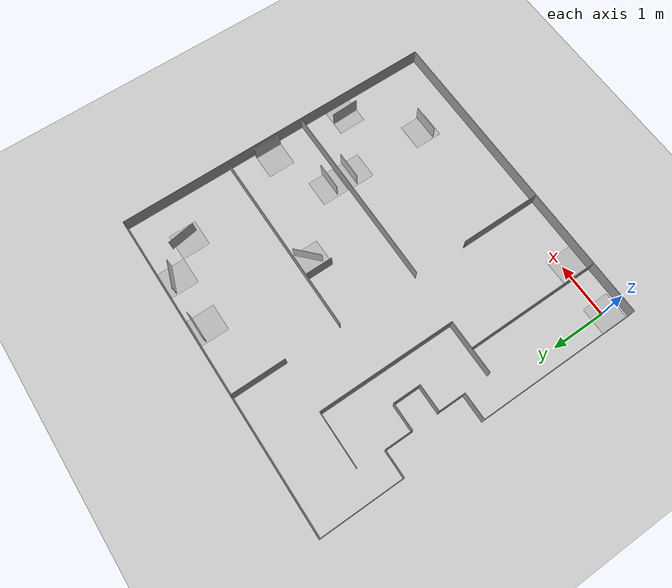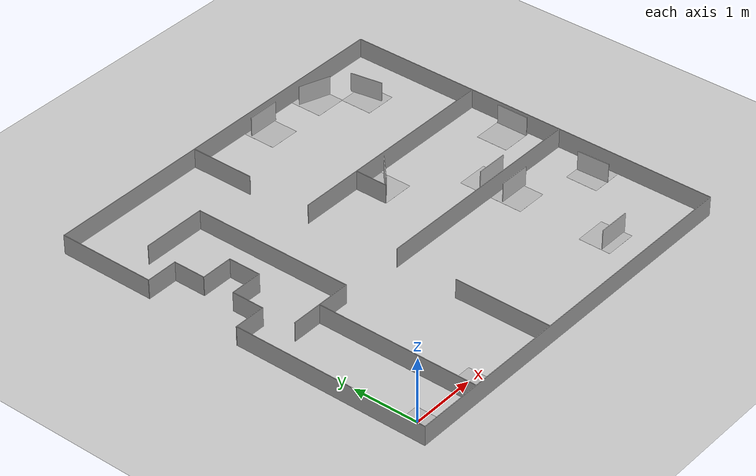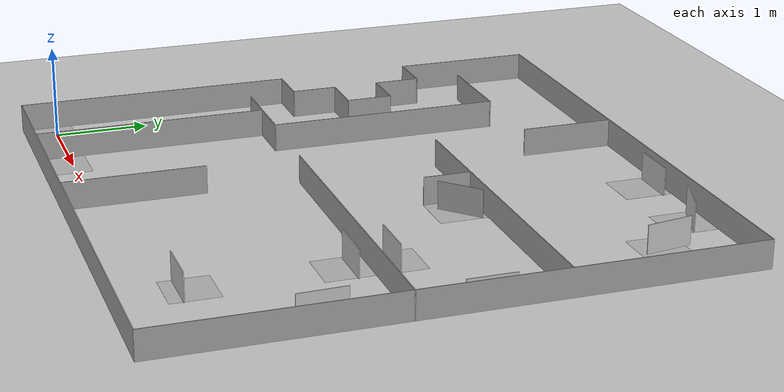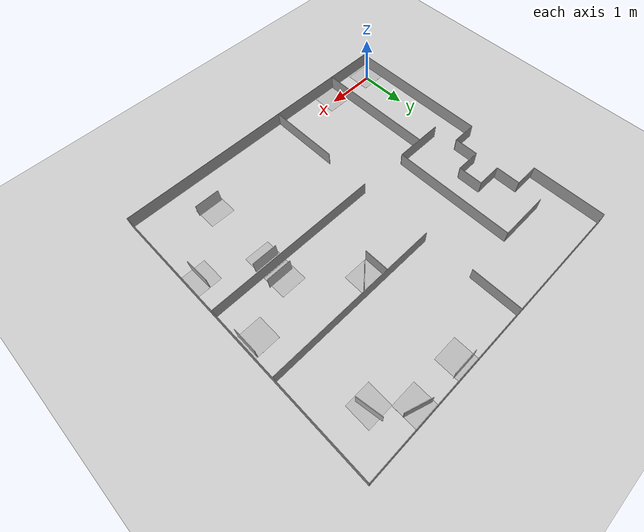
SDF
<sdf version="1.6">
 <world name="default">
  <light name="sun" type="directional">
   <pose>0 0 10 0 -0 0</pose>
   <diffuse>0.8 0.8 0.8 1</diffuse>
   <specular>0.2 0.2 0.2 1</specular>
   <attenuation>
    <range>1000</range>
    <constant>0.9</constant>
    <linear>0.01</linear>
    <quadratic>0.001</quadratic>
   </attenuation>
   <direction>-0.5 0.1 -0.9</direction>
  </light>
  <model name="ground_plane">
   <static>1</static>
   <link name="link">
    <collision name="collision">
     <geometry><plane><normal>0 0 1</normal><size>100 100</size></plane></geometry>
     <surface>
      <contact><collide_bitmask>65535</collide_bitmask></contact>
      <friction><ode><mu>100</mu><mu2>50</mu2></ode></friction>
     </surface>
    </collision>
    <visual name="visual">
     <cast_shadows>0</cast_shadows>
     <geometry><plane><normal>0 0 1</normal><size>100 100</size></plane></geometry>
     <material>
      <script><uri>file://media/materials/scripts/gazebo.material</uri><name>Gazebo/Grey</name></script>
     </material>
    </visual>
   </link>
  </model>
  <gravity>0 0 -9.8</gravity>
  <magnetic_field>6e-06 2.3e-05 -4.2e-05</magnetic_field>
  <atmosphere type="adiabatic"/>
  <physics name="default_physics" default="0" type="ode">
   <max_step_size>0.001</max_step_size>
   <real_time_factor>1</real_time_factor>
   <real_time_update_rate>1000</real_time_update_rate>
  </physics>
  <scene><ambient>0.4 0.4 0.4 1</ambient><background>0.7 0.7 0.7 1</background><shadows>1</shadows></scene>
  <audio><device>default</device></audio>
  <spherical_coordinates>
   <surface_model>EARTH_WGS84</surface_model>
   <latitude_deg>0</latitude_deg>
   <longitude_deg>0</longitude_deg>
   <elevation>0</elevation>
   <heading_deg>0</heading_deg>
  </spherical_coordinates>
  <model name="arena">
   <pose>2.72717 2.66142 0 0 -0 0</pose>
   <link name="Wall_1">
    <collision name="Wall_1_Collision">
     <geometry><box><size>6 0.01 0.3</size></box></geometry>
     <pose>0 0 0.15 0 -0 0</pose>
    </collision>
    <visual name="Wall_1_Visual">
     <pose>0 0 0.15 0 -0 0</pose>
     <geometry><box><size>6 0.01 0.3</size></box></geometry>
     <material>
      <script><uri>file://media/materials/scripts/gazebo.material</uri><name>Gazebo/Grey</name></script>
      <ambient>1 1 1 1</ambient>
     </material>
     <meta><layer>0</layer></meta>
    </visual>
    <pose>0.001988 -2.99751 0 0 -0 0</pose>
   </link>
   <link name="Wall_11">
    <collision name="Wall_11_Collision">
     <geometry><box><size>1.5 0.01 0.3</size></box></geometry>
     <pose>0 0 0.15 0 -0 0</pose>
    </collision>
    <visual name="Wall_11_Visual">
     <pose>0 0 0.15 0 -0 0</pose>
     <geometry><box><size>1.5 0.01 0.3</size></box></geometry>
     <material>
      <script><uri>file://media/materials/scripts/gazebo.material</uri><name>Gazebo/Grey</name></script>
      <ambient>1 1 1 1</ambient>
     </material>
     <meta><layer>0</layer></meta>
    </visual>
    <pose>-2.99841 2.25251 0 0 -0 1.5708</pose>
   </link>
   <link name="Wall_20">
    <collision name="Wall_20_Collision">
     <geometry><box><size>0.5 0.01 0.3</size></box></geometry>
     <pose>0 0 0.15 0 -0 0</pose>
    </collision>
    <visual name="Wall_20_Visual">
     <pose>0 0 0.15 0 -0 0</pose>
     <geometry><box><size>0.5 0.01 0.3</size></box></geometry>
     <material>
      <script><uri>file://media/materials/scripts/gazebo.material</uri><name>Gazebo/Grey</name></script>
      <ambient>1 1 1 1</ambient>
     </material>
     <meta><layer>0</layer></meta>
    </visual>
    <pose>-2.75425 1.50057 0 0 -0 0</pose>
   </link>
   <link name="Wall_22">
    <collision name="Wall_22_Collision">
     <geometry><box><size>0.5 0.01 0.3</size></box></geometry>
     <pose>0 0 0.15 0 -0 0</pose>
    </collision>
    <visual name="Wall_22_Visual">
     <pose>0 0 0.15 0 -0 0</pose>
     <geometry><box><size>0.5 0.01 0.3</size></box></geometry>
     <material>
      <script><uri>file://media/materials/scripts/gazebo.material</uri><name>Gazebo/Grey</name></script>
      <ambient>1 1 1 1</ambient>
     </material>
     <meta><layer>0</layer></meta>
    </visual>
    <pose>-2.50969 1.25495 0 0 -0 1.5708</pose>
   </link>
   <link name="Wall_24">
    <collision name="Wall_24_Collision">
     <geometry><box><size>0.5 0.01 0.3</size></box></geometry>
     <pose>0 0 0.15 0 -0 0</pose>
    </collision>
    <visual name="Wall_24_Visual">
     <pose>0 0 0.15 0 -0 0</pose>
     <geometry><box><size>0.5 0.01 0.3</size></box></geometry>
     <material>
      <script><uri>file://media/materials/scripts/gazebo.material</uri><name>Gazebo/Grey</name></script>
      <ambient>1 1 1 1</ambient>
     </material>
     <meta><layer>0</layer></meta>
    </visual>
    <pose>-2.26459 1.00122 0 0 -0 0</pose>
   </link>
   <link name="Wall_28">
    <collision name="Wall_28_Collision">
     <geometry><box><size>0.5 0.01 0.3</size></box></geometry>
     <pose>0 0 0.15 0 -0 0</pose>
    </collision>
    <visual name="Wall_28_Visual">
     <pose>0 0 0.15 0 -0 0</pose>
     <geometry><box><size>0.5 0.01 0.3</size></box></geometry>
     <material>
      <script><uri>file://media/materials/scripts/gazebo.material</uri><name>Gazebo/Grey</name></script>
      <ambient>1 1 1 1</ambient>
     </material>
     <meta><layer>0</layer></meta>
    </visual>
    <pose>-2.01503 0.755808 0 0 -0 -1.5708</pose>
   </link>
   <link name="Wall_30">
    <collision name="Wall_30_Collision">
     <geometry><box><size>0.5 0.01 0.3</size></box></geometry>
     <pose>0 0 0.15 0 -0 0</pose>
    </collision>
    <visual name="Wall_30_Visual">
     <pose>0 0 0.15 0 -0 0</pose>
     <geometry><box><size>0.5 0.01 0.3</size></box></geometry>
     <material>
      <script><uri>file://media/materials/scripts/gazebo.material</uri><name>Gazebo/Grey</name></script>
      <ambient>1 1 1 1</ambient>
     </material>
     <meta><layer>0</layer></meta>
    </visual>
    <pose>-2.25991 0.503524 0 0 -0 0</pose>
   </link>
   <link name="Wall_34">
    <collision name="Wall_34_Collision">
     <geometry><box><size>0.5 0.01 0.3</size></box></geometry>
     <pose>0 0 0.15 0 -0 0</pose>
    </collision>
    <visual name="Wall_34_Visual">
     <pose>0 0 0.15 0 -0 0</pose>
     <geometry><box><size>0.5 0.01 0.3</size></box></geometry>
     <material>
      <script><uri>file://media/materials/scripts/gazebo.material</uri><name>Gazebo/Grey</name></script>
      <ambient>1 1 1 1</ambient>
     </material>
     <meta><layer>0</layer></meta>
    </visual>
    <pose>-2.50907 0.257403 0 0 -0 -1.5708</pose>
   </link>
   <link name="Wall_36">
    <collision name="Wall_36_Collision">
     <geometry><box><size>0.5 0.01 0.3</size></box></geometry>
     <pose>0 0 0.15 0 -0 0</pose>
    </collision>
    <visual name="Wall_36_Visual">
     <pose>0 0 0.15 0 -0 0</pose>
     <geometry><box><size>0.5 0.01 0.3</size></box></geometry>
     <material>
      <script><uri>file://media/materials/scripts/gazebo.material</uri><name>Gazebo/Grey</name></script>
      <ambient>1 1 1 1</ambient>
     </material>
     <meta><layer>0</layer></meta>
    </visual>
    <pose>-2.75227 0.011599 0 0 -0 0</pose>
   </link>
   <link name="Wall_38">
    <collision name="Wall_38_Collision">
     <geometry><box><size>3.012 0.01 0.3</size></box></geometry>
     <pose>0 0 0.15 0 -0 0</pose>
    </collision>
    <visual name="Wall_38_Visual">
     <pose>0 0 0.15 0 -0 0</pose>
     <geometry><box><size>3.012 0.01 0.3</size></box></geometry>
     <material>
      <script><uri>file://media/materials/scripts/gazebo.material</uri><name>Gazebo/Grey</name></script>
      <ambient>1 1 1 1</ambient>
     </material>
     <meta><layer>0</layer></meta>
    </visual>
    <pose>-2.99601 -1.49551 0 0 -0 -1.5708</pose>
   </link>
   <link name="Wall_41">
    <collision name="Wall_41_Collision">
     <geometry><box><size>1 0.01 0.3</size></box></geometry>
     <pose>0 0 0.15 0 -0 0</pose>
    </collision>
    <visual name="Wall_41_Visual">
     <pose>0 0 0.15 0 -0 0</pose>
     <geometry><box><size>1 0.01 0.3</size></box></geometry>
     <material>
      <script><uri>file://media/materials/scripts/gazebo.material</uri><name>Gazebo/Grey</name></script>
      <ambient>1 1 1 1</ambient>
     </material>
     <meta><layer>0</layer></meta>
    </visual>
    <pose>-0.498279 2.49812 0 0 -0 1.5708</pose>
   </link>
   <link name="Wall_44">
    <collision name="Wall_44_Collision">
     <geometry><box><size>3.5 0.01 0.3</size></box></geometry>
     <pose>0 0 0.15 0 -0 0</pose>
    </collision>
    <visual name="Wall_44_Visual">
     <pose>0 0 0.15 0 -0 0</pose>
     <geometry><box><size>3.5 0.01 0.3</size></box></geometry>
     <material>
      <script><uri>file://media/materials/scripts/gazebo.material</uri><name>Gazebo/Grey</name></script>
      <ambient>1 1 1 1</ambient>
     </material>
     <meta><layer>0</layer></meta>
    </visual>
    <pose>1.25071 0.982331 0 0 -0 0</pose>
   </link>
   <link name="Wall_46">
    <collision name="Wall_46_Collision">
     <geometry><box><size>0.5 0.01 0.3</size></box></geometry>
     <pose>0 0 0.15 0 -0 0</pose>
    </collision>
    <visual name="Wall_46_Visual">
     <pose>0 0 0.15 0 -0 0</pose>
     <geometry><box><size>0.5 0.01 0.3</size></box></geometry>
     <material>
      <script><uri>file://media/materials/scripts/gazebo.material</uri><name>Gazebo/Grey</name></script>
      <ambient>1 1 1 1</ambient>
     </material>
     <meta><layer>0</layer></meta>
    </visual>
    <pose>0.496275 0.729352 0 0 -0 1.5708</pose>
   </link>
   <link name="Wall_48">
    <collision name="Wall_48_Collision">
     <geometry><box><size>3.5 0.01 0.3</size></box></geometry>
     <pose>0 0 0.15 0 -0 0</pose>
    </collision>
    <visual name="Wall_48_Visual">
     <pose>0 0 0.15 0 -0 0</pose>
     <geometry><box><size>3.5 0.01 0.3</size></box></geometry>
     <material>
      <script><uri>file://media/materials/scripts/gazebo.material</uri><name>Gazebo/Grey</name></script>
      <ambient>1 1 1 1</ambient>
     </material>
     <meta><layer>0</layer></meta>
    </visual>
    <pose>1.25425 -0.520404 0 0 -0 0</pose>
   </link>
   <link name="Wall_50">
    <collision name="Wall_50_Collision">
     <geometry><box><size>1.5 0.01 0.3</size></box></geometry>
     <pose>0 0 0.15 0 -0 0</pose>
    </collision>
    <visual name="Wall_50_Visual">
     <pose>0 0 0.15 0 -0 0</pose>
     <geometry><box><size>1.5 0.01 0.3</size></box></geometry>
     <material>
      <script><uri>file://media/materials/scripts/gazebo.material</uri><name>Gazebo/Grey</name></script>
      <ambient>1 1 1 1</ambient>
     </material>
     <meta><layer>0</layer></meta>
    </visual>
    <pose>-0.512233 -2.25115 0 0 -0 -1.5708</pose>
   </link>
   <link name="Wall_52">
    <collision name="Wall_52_Collision">
     <geometry><box><size>2.5 0.01 0.3</size></box></geometry>
     <pose>0 0 0.15 0 -0 0</pose>
    </collision>
    <visual name="Wall_52_Visual">
     <pose>0 0 0.15 0 -0 0</pose>
     <geometry><box><size>2.5 0.01 0.3</size></box></geometry>
     <material>
      <script><uri>file://media/materials/scripts/gazebo.material</uri><name>Gazebo/Grey</name></script>
      <ambient>1 1 1 1</ambient>
     </material>
     <meta><layer>0</layer></meta>
    </visual>
    <pose>-2.00505 -1.74423 0 0 -0 -1.5708</pose>
   </link>
   <link name="Wall_54">
    <collision name="Wall_54_Collision">
     <geometry><box><size>1 0.01 0.3</size></box></geometry>
     <pose>0 0 0.15 0 -0 0</pose>
    </collision>
    <visual name="Wall_54_Visual">
     <pose>0 0 0.15 0 -0 0</pose>
     <geometry><box><size>1 0.01 0.3</size></box></geometry>
     <material>
      <script><uri>file://media/materials/scripts/gazebo.material</uri><name>Gazebo/Grey</name></script>
      <ambient>1 1 1 1</ambient>
     </material>
     <meta><layer>0</layer></meta>
    </visual>
    <pose>-1.98078 -0.499121 0 0 -0 0</pose>
   </link>
   <link name="Wall_56">
    <collision name="Wall_56_Collision">
     <geometry><box><size>2.5 0.01 0.3</size></box></geometry>
     <pose>0 0 0.15 0 -0 0</pose>
    </collision>
    <visual name="Wall_56_Visual">
     <pose>0 0 0.15 0 -0 0</pose>
     <geometry><box><size>2.5 0.01 0.3</size></box></geometry>
     <material>
      <script><uri>file://media/materials/scripts/gazebo.material</uri><name>Gazebo/Grey</name></script>
      <ambient>1 1 1 1</ambient>
     </material>
     <meta><layer>0</layer></meta>
    </visual>
    <pose>-1.48616 0.751059 0 0 -0 -1.5708</pose>
   </link>
   <link name="Wall_58">
    <collision name="Wall_58_Collision">
     <geometry><box><size>1 0.01 0.3</size></box></geometry>
     <pose>0 0 0.15 0 -0 0</pose>
    </collision>
    <visual name="Wall_58_Visual">
     <pose>0 0 0.15 0 -0 0</pose>
     <geometry><box><size>1 0.01 0.3</size></box></geometry>
     <material>
      <script><uri>file://media/materials/scripts/gazebo.material</uri><name>Gazebo/Grey</name></script>
      <ambient>1 1 1 1</ambient>
     </material>
     <meta><layer>0</layer></meta>
    </visual>
    <pose>-1.9786 2.00012 0 0 -0 0</pose>
   </link>
   <link name="Wall_6">
    <collision name="Wall_6_Collision">
     <geometry><box><size>6 0.01 0.3</size></box></geometry>
     <pose>0 0 0.15 0 -0 0</pose>
    </collision>
    <visual name="Wall_6_Visual">
     <pose>0 0 0.15 0 -0 0</pose>
     <geometry><box><size>6 0.01 0.3</size></box></geometry>
     <material>
      <script><uri>file://media/materials/scripts/gazebo.material</uri><name>Gazebo/Grey</name></script>
      <ambient>1 1 1 1</ambient>
     </material>
     <meta><layer>0</layer></meta>
    </visual>
    <pose>2.99837 -0.000334 0 0 -0 -1.5708</pose>
   </link>
   <link name="Wall_8">
    <collision name="Wall_8_Collision">
     <geometry><box><size>6 0.01 0.3</size></box></geometry>
     <pose>0 0 0.15 0 -0 0</pose>
    </collision>
    <visual name="Wall_8_Visual">
     <pose>0 0 0.15 0 -0 0</pose>
     <geometry><box><size>6 0.01 0.3</size></box></geometry>
     <material>
      <script><uri>file://media/materials/scripts/gazebo.material</uri><name>Gazebo/Grey</name></script>
      <ambient>1 1 1 1</ambient>
     </material>
     <meta><layer>0</layer></meta>
    </visual>
    <pose>-0.003034 2.99691 0 0 -0 0</pose>
   </link>
   <static>1</static>
  </model>
  <model name="start_plane">
   <static>1</static>
   <link name="link">
    <collision name="collision">
     <geometry><plane><normal>0 0 1</normal><size>0.5 0.5</size></plane></geometry>
     <surface><friction><ode><mu>100</mu><mu2>50</mu2></ode></friction></surface>
    </collision>
    <visual name="visual">
     <cast_shadows>0</cast_shadows>
     <geometry><plane><normal>0 0 1</normal><size>0.5 0.5</size></plane></geometry>
     <material>
      <script>
       <uri>model://start_plane/materials/scripts</uri>
       <uri>model://start_plane/materials/textures/</uri>
       <name>StartPlane/Image</name>
      </script>
     </material>
    </visual>
   </link>
   <pose>-0.018469 -0.051337 0 0 -0 0</pose>
  </model>
  <model name="end_plane">
   <static>1</static>
   <link name="link">
    <collision name="collision">
     <geometry><plane><normal>0 0 1</normal><size>0.5 0.5</size></plane></geometry>
     <surface><friction><ode><mu>100</mu><mu2>50</mu2></ode></friction></surface>
    </collision>
    <visual name="visual">
     <cast_shadows>0</cast_shadows>
     <geometry><plane><normal>0 0 1</normal><size>0.5 0.5</size></plane></geometry>
     <material>
      <script>
       <uri>model://end_plane/materials/scripts</uri>
       <uri>model://end_plane/materials/textures/</uri>
       <name>EndPlane/Image</name>
      </script>
     </material>
    </visual>
   </link>
   <pose>0.969955 -0.083763 0 0 -0 0</pose>
  </model>
  <model name="end_plane_2">
   <static>1</static>
   <link name="link">
    <collision name="collision">
     <geometry><plane><normal>0 0 1</normal><size>0.5 0.5</size></plane></geometry>
     <surface><friction><ode><mu>100</mu><mu2>50</mu2></ode></friction></surface>
    </collision>
    <visual name="visual">
     <cast_shadows>0</cast_shadows>
     <geometry><plane><normal>0 0 1</normal><size>0.5 0.5</size></plane></geometry>
     <material>
      <script>
       <uri>model://end_plane/materials/scripts</uri>
       <uri>model://end_plane/materials/textures/</uri>
       <name>EndPlane/Image</name>
      </script>
     </material>
    </visual>
   </link>
   <pose>4.47135 5.4022 0 0 -0 0</pose>
  </model>
  <model name="end_plane_1">
   <static>1</static>
   <link name="link">
    <collision name="collision">
     <geometry><plane><normal>0 0 1</normal><size>0.5 0.5</size></plane></geometry>
     <surface><friction><ode><mu>100</mu><mu2>50</mu2></ode></friction></surface>
    </collision>
    <visual name="visual">
     <cast_shadows>0</cast_shadows>
     <geometry><plane><normal>0 0 1</normal><size>0.5 0.5</size></plane></geometry>
     <material>
      <script>
       <uri>model://end_plane/materials/scripts</uri>
       <uri>model://end_plane/materials/textures/</uri>
       <name>EndPlane/Image</name>
      </script>
     </material>
    </visual>
   </link>
   <pose>5.45751 2.89676 0 0 -0 0</pose>
  </model>
  <model name="end_plane_0">
   <static>1</static>
   <link name="link">
    <collision name="collision">
     <geometry><plane><normal>0 0 1</normal><size>0.5 0.5</size></plane></geometry>
     <surface><friction><ode><mu>100</mu><mu2>50</mu2></ode></friction></surface>
    </collision>
    <visual name="visual">
     <cast_shadows>0</cast_shadows>
     <geometry><plane><normal>0 0 1</normal><size>0.5 0.5</size></plane></geometry>
     <material>
      <script>
       <uri>model://end_plane/materials/scripts</uri>
       <uri>model://end_plane/materials/textures/</uri>
       <name>EndPlane/Image</name>
      </script>
     </material>
    </visual>
   </link>
   <pose>5.47441 1.38885 0 0 -0 0</pose>
  </model>
  <model name="end_plane_4">
   <static>1</static>
   <link name="link">
    <collision name="collision">
     <geometry><plane><normal>0 0 1</normal><size>0.5 0.5</size></plane></geometry>
     <surface><friction><ode><mu>100</mu><mu2>50</mu2></ode></friction></surface>
    </collision>
    <visual name="visual">
     <cast_shadows>0</cast_shadows>
     <geometry><plane><normal>0 0 1</normal><size>0.5 0.5</size></plane></geometry>
     <material>
      <script>
       <uri>model://end_plane/materials/scripts</uri>
       <uri>model://end_plane/materials/textures/</uri>
       <name>EndPlane/Image</name>
      </script>
     </material>
    </visual>
   </link>
   <pose>3.48813 5.39887 0 0 -0 0</pose>
  </model>
  <model name="end_plane_3">
   <static>1</static>
   <link name="link">
    <collision name="collision">
     <geometry><plane><normal>0 0 1</normal><size>0.5 0.5</size></plane></geometry>
     <surface><friction><ode><mu>100</mu><mu2>50</mu2></ode></friction></surface>
    </collision>
    <visual name="visual">
     <cast_shadows>0</cast_shadows>
     <geometry><plane><normal>0 0 1</normal><size>0.5 0.5</size></plane></geometry>
     <material>
      <script>
       <uri>model://end_plane/materials/scripts</uri>
       <uri>model://end_plane/materials/textures/</uri>
       <name>EndPlane/Image</name>
      </script>
     </material>
    </visual>
   </link>
   <pose>4.96195 4.90542 0 0 -0 0</pose>
  </model>
  <model name="end_plane_5">
   <static>1</static>
   <link name="link">
    <collision name="collision">
     <geometry><plane><normal>0 0 1</normal><size>0.5 0.5</size></plane></geometry>
     <surface><friction><ode><mu>100</mu><mu2>50</mu2></ode></friction></surface>
    </collision>
    <visual name="visual">
     <cast_shadows>0</cast_shadows>
     <geometry><plane><normal>0 0 1</normal><size>0.5 0.5</size></plane></geometry>
     <material>
      <script>
       <uri>model://end_plane/materials/scripts</uri>
       <uri>model://end_plane/materials/textures/</uri>
       <name>EndPlane/Image</name>
      </script>
     </material>
    </visual>
   </link>
   <pose>3.48118 3.38532 0 0 -0 0</pose>
  </model>
  <model name="end_plane_7">
   <static>1</static>
   <link name="link">
    <collision name="collision">
     <geometry><plane><normal>0 0 1</normal><size>0.5 0.5</size></plane></geometry>
     <surface><friction><ode><mu>100</mu><mu2>50</mu2></ode></friction></surface>
    </collision>
    <visual name="visual">
     <cast_shadows>0</cast_shadows>
     <geometry><plane><normal>0 0 1</normal><size>0.5 0.5</size></plane></geometry>
     <material>
      <script>
       <uri>model://end_plane/materials/scripts</uri>
       <uri>model://end_plane/materials/textures/</uri>
       <name>EndPlane/Image</name>
      </script>
     </material>
    </visual>
   </link>
   <pose>4.46644 2.40792 0 0 -0 0</pose>
  </model>
  <model name="end_plane_6">
   <static>1</static>
   <link name="link">
    <collision name="collision">
     <geometry><plane><normal>0 0 1</normal><size>0.5 0.5</size></plane></geometry>
     <surface><friction><ode><mu>100</mu><mu2>50</mu2></ode></friction></surface>
    </collision>
    <visual name="visual">
     <cast_shadows>0</cast_shadows>
     <geometry><plane><normal>0 0 1</normal><size>0.5 0.5</size></plane></geometry>
     <material>
      <script>
       <uri>model://end_plane/materials/scripts</uri>
       <uri>model://end_plane/materials/textures/</uri>
       <name>EndPlane/Image</name>
      </script>
     </material>
    </visual>
   </link>
   <pose>4.45691 1.88909 0 0 -0 0</pose>
  </model>
  <model name="end_plane_10">
   <static>1</static>
   <link name="link">
    <collision name="collision">
     <geometry><plane><normal>0 0 1</normal><size>0.5 0.5</size></plane></geometry>
     <surface><friction><ode><mu>100</mu><mu2>50</mu2></ode></friction></surface>
    </collision>
    <visual name="visual">
     <cast_shadows>0</cast_shadows>
     <geometry><plane><normal>0 0 1</normal><size>0.5 0.5</size></plane></geometry>
     <material>
      <script>
       <uri>model://end_plane/materials/scripts</uri>
       <uri>model://end_plane/materials/textures/</uri>
       <name>EndPlane/Image</name>
      </script>
     </material>
    </visual>
   </link>
   <pose>4.4615 0.432115 0 0 -0 0</pose>
  </model>
  <model name="04-tv-2">
   <link name="link_0">
    <inertial>
     <mass>1</mass>
     <inertia>
      <ixx>0.166667</ixx>
      <ixy>0</ixy>
      <ixz>0</ixz>
      <iyy>0.166667</iyy>
      <iyz>0</iyz>
      <izz>0.166667</izz>
     </inertia>
    </inertial>
    <visual name="visual">
     <geometry><box><size>0.5 0.01 0.3</size></box></geometry>
     <material>
      <script>
       <uri>model://04-tv-2/materials/scripts</uri>
       <uri>model://04-tv-2/materials/textures/</uri>
       <name>Targets/04-tv-2</name>
      </script>
     </material>
    </visual>
    <collision name="collision">
     <geometry><box><size>0.5 0.01 0.3</size></box></geometry>
     <surface>
      <friction>
       <ode><mu>1</mu><mu2>1</mu2><fdir1>0 0 0</fdir1><slip1>0</slip1><slip2>0</slip2></ode>
       <torsional>
        <coefficient>1</coefficient>
        <patch_radius>0</patch_radius>
        <surface_radius>0</surface_radius>
        <use_patch_radius>1</use_patch_radius>
        <ode><slip>0</slip></ode>
       </torsional>
      </friction>
      <bounce><restitution_coefficient>0</restitution_coefficient><threshold>1e+06</threshold></bounce>
      <contact>
       <collide_without_contact>0</collide_without_contact>
       <collide_without_contact_bitmask>1</collide_without_contact_bitmask>
       <collide_bitmask>1</collide_bitmask>
       <ode>
        <soft_cfm>0</soft_cfm>
        <soft_erp>0.2</soft_erp>
        <kp>1e+13</kp>
        <kd>1</kd>
        <max_vel>0.01</max_vel>
        <min_depth>0</min_depth>
       </ode>
       <bullet>
        <split_impulse>1</split_impulse>
        <split_impulse_penetration_threshold>-0.01</split_impulse_penetration_threshold>
        <soft_cfm>0</soft_cfm>
        <soft_erp>0.2</soft_erp>
        <kp>1e+13</kp>
        <kd>1</kd>
       </bullet>
      </contact>
     </surface>
    </collision>
   </link>
   <static>0</static>
   <pose>3.51256 5.5544 0.149998 -2e-06 -0 -0</pose>
  </model>
  <model name="02-birds">
   <link name="link_0">
    <inertial>
     <mass>1</mass>
     <inertia>
      <ixx>0.166667</ixx>
      <ixy>0</ixy>
      <ixz>0</ixz>
      <iyy>0.166667</iyy>
      <iyz>0</iyz>
      <izz>0.166667</izz>
     </inertia>
    </inertial>
    <visual name="visual">
     <geometry><box><size>0.5 0.01 0.3</size></box></geometry>
     <material>
      <script>
       <uri>model://02-birds/materials/scripts</uri>
       <uri>model://02-birds/materials/textures/</uri>
       <name>Targets/02-birds</name>
      </script>
     </material>
    </visual>
    <collision name="collision">
     <geometry><box><size>0.5 0.01 0.3</size></box></geometry>
     <surface>
      <friction>
       <ode><mu>1</mu><mu2>1</mu2><fdir1>0 0 0</fdir1><slip1>0</slip1><slip2>0</slip2></ode>
       <torsional>
        <coefficient>1</coefficient>
        <patch_radius>0</patch_radius>
        <surface_radius>0</surface_radius>
        <use_patch_radius>1</use_patch_radius>
        <ode><slip>0</slip></ode>
       </torsional>
      </friction>
      <bounce><restitution_coefficient>0</restitution_coefficient><threshold>1e+06</threshold></bounce>
      <contact>
       <collide_without_contact>0</collide_without_contact>
       <collide_without_contact_bitmask>1</collide_without_contact_bitmask>
       <collide_bitmask>1</collide_bitmask>
       <ode>
        <soft_cfm>0</soft_cfm>
        <soft_erp>0.2</soft_erp>
        <kp>1e+13</kp>
        <kd>1</kd>
        <max_vel>0.01</max_vel>
        <min_depth>0</min_depth>
       </ode>
       <bullet>
        <split_impulse>1</split_impulse>
        <split_impulse_penetration_threshold>-0.01</split_impulse_penetration_threshold>
        <soft_cfm>0</soft_cfm>
        <soft_erp>0.2</soft_erp>
        <kp>1e+13</kp>
        <kd>1</kd>
       </bullet>
      </contact>
     </surface>
    </collision>
   </link>
   <static>0</static>
   <pose>4.48939 5.46614 0.149993 -1e-06 -0 -0.334264</pose>
  </model>
  <model name="00-blank">
   <link name="link_0">
    <inertial>
     <mass>1</mass>
     <inertia>
      <ixx>0.166667</ixx>
      <ixy>0</ixy>
      <ixz>0</ixz>
      <iyy>0.166667</iyy>
      <iyz>0</iyz>
      <izz>0.166667</izz>
     </inertia>
    </inertial>
    <visual name="visual">
     <geometry><box><size>0.5 0.01 0.3</size></box></geometry>
     <material>
      <script>
       <uri>model://00-blank/materials/scripts</uri>
       <uri>model://00-blank/materials/textures/</uri>
       <name>Targets/00-blank</name>
      </script>
     </material>
    </visual>
    <collision name="collision">
     <geometry><box><size>0.5 0.01 0.3</size></box></geometry>
     <surface>
      <friction>
       <ode><mu>1</mu><mu2>1</mu2><fdir1>0 0 0</fdir1><slip1>0</slip1><slip2>0</slip2></ode>
       <torsional>
        <coefficient>1</coefficient>
        <patch_radius>0</patch_radius>
        <surface_radius>0</surface_radius>
        <use_patch_radius>1</use_patch_radius>
        <ode><slip>0</slip></ode>
       </torsional>
      </friction>
      <bounce><restitution_coefficient>0</restitution_coefficient><threshold>1e+06</threshold></bounce>
      <contact>
       <collide_without_contact>0</collide_without_contact>
       <collide_without_contact_bitmask>1</collide_without_contact_bitmask>
       <collide_bitmask>1</collide_bitmask>
       <ode>
        <soft_cfm>0</soft_cfm>
        <soft_erp>0.2</soft_erp>
        <kp>1e+13</kp>
        <kd>1</kd>
        <max_vel>0.01</max_vel>
        <min_depth>0</min_depth>
       </ode>
       <bullet>
        <split_impulse>1</split_impulse>
        <split_impulse_penetration_threshold>-0.01</split_impulse_penetration_threshold>
        <soft_cfm>0</soft_cfm>
        <soft_erp>0.2</soft_erp>
        <kp>1e+13</kp>
        <kd>1</kd>
       </bullet>
      </contact>
     </surface>
    </collision>
   </link>
   <static>0</static>
   <pose>5.01432 4.9619 0.149998 -2e-06 -0 -1.40969</pose>
  </model>
  <model name="08-chair">
   <link name="link_0">
    <inertial>
     <mass>1</mass>
     <inertia>
      <ixx>0.166667</ixx>
      <ixy>0</ixy>
      <ixz>0</ixz>
      <iyy>0.166667</iyy>
      <iyz>0</iyz>
      <izz>0.166667</izz>
     </inertia>
    </inertial>
    <visual name="visual">
     <geometry><box><size>0.5 0.01 0.3</size></box></geometry>
     <material>
      <script>
       <uri>model://08-chair/materials/scripts</uri>
       <uri>model://08-chair/materials/textures/</uri>
       <name>Targets/08-chair</name>
      </script>
     </material>
    </visual>
    <collision name="collision">
     <geometry><box><size>0.5 0.01 0.3</size></box></geometry>
     <surface>
      <friction>
       <ode><mu>1</mu><mu2>1</mu2><fdir1>0 0 0</fdir1><slip1>0</slip1><slip2>0</slip2></ode>
       <torsional>
        <coefficient>1</coefficient>
        <patch_radius>0</patch_radius>
        <surface_radius>0</surface_radius>
        <use_patch_radius>1</use_patch_radius>
        <ode><slip>0</slip></ode>
       </torsional>
      </friction>
      <bounce><restitution_coefficient>0</restitution_coefficient><threshold>1e+06</threshold></bounce>
      <contact>
       <collide_without_contact>0</collide_without_contact>
       <collide_without_contact_bitmask>1</collide_without_contact_bitmask>
       <collide_bitmask>1</collide_bitmask>
       <ode>
        <soft_cfm>0</soft_cfm>
        <soft_erp>0.2</soft_erp>
        <kp>1e+13</kp>
        <kd>1</kd>
        <max_vel>0.01</max_vel>
        <min_depth>0</min_depth>
       </ode>
       <bullet>
        <split_impulse>1</split_impulse>
        <split_impulse_penetration_threshold>-0.01</split_impulse_penetration_threshold>
        <soft_cfm>0</soft_cfm>
        <soft_erp>0.2</soft_erp>
        <kp>1e+13</kp>
        <kd>1</kd>
       </bullet>
      </contact>
     </surface>
    </collision>
   </link>
   <static>0</static>
   <pose>3.54058 3.41424 0.149993 1e-06 -0 0.752257</pose>
  </model>
  <model name="03-bed-2">
   <link name="link_0">
    <inertial>
     <mass>1</mass>
     <inertia>
      <ixx>0.166667</ixx>
      <ixy>0</ixy>
      <ixz>0</ixz>
      <iyy>0.166667</iyy>
      <iyz>0</iyz>
      <izz>0.166667</izz>
     </inertia>
    </inertial>
    <visual name="visual">
     <geometry><box><size>0.5 0.01 0.3</size></box></geometry>
     <material>
      <script>
       <uri>model://03-bed-2/materials/scripts</uri>
       <uri>model://03-bed-2/materials/textures/</uri>
       <name>Targets/03-bed-2</name>
      </script>
     </material>
    </visual>
    <collision name="collision">
     <geometry><box><size>0.5 0.01 0.3</size></box></geometry>
     <surface>
      <friction>
       <ode><mu>1</mu><mu2>1</mu2><fdir1>0 0 0</fdir1><slip1>0</slip1><slip2>0</slip2></ode>
       <torsional>
        <coefficient>1</coefficient>
        <patch_radius>0</patch_radius>
        <surface_radius>0</surface_radius>
        <use_patch_radius>1</use_patch_radius>
        <ode><slip>0</slip></ode>
       </torsional>
      </friction>
      <bounce><restitution_coefficient>0</restitution_coefficient><threshold>1e+06</threshold></bounce>
      <contact>
       <collide_without_contact>0</collide_without_contact>
       <collide_without_contact_bitmask>1</collide_without_contact_bitmask>
       <collide_bitmask>1</collide_bitmask>
       <ode>
        <soft_cfm>0</soft_cfm>
        <soft_erp>0.2</soft_erp>
        <kp>1e+13</kp>
        <kd>1</kd>
        <max_vel>0.01</max_vel>
        <min_depth>0</min_depth>
       </ode>
       <bullet>
        <split_impulse>1</split_impulse>
        <split_impulse_penetration_threshold>-0.01</split_impulse_penetration_threshold>
        <soft_cfm>0</soft_cfm>
        <soft_erp>0.2</soft_erp>
        <kp>1e+13</kp>
        <kd>1</kd>
       </bullet>
      </contact>
     </surface>
    </collision>
   </link>
   <static>0</static>
   <pose>4.50431 2.3572 0.149992 1e-06 -0 0</pose>
  </model>
  <model name="05-person-4">
   <link name="link_0">
    <inertial>
     <mass>1</mass>
     <inertia>
      <ixx>0.166667</ixx>
      <ixy>0</ixy>
      <ixz>0</ixz>
      <iyy>0.166667</iyy>
      <iyz>0</iyz>
      <izz>0.166667</izz>
     </inertia>
    </inertial>
    <visual name="visual">
     <geometry><box><size>0.5 0.01 0.3</size></box></geometry>
     <material>
      <script>
       <uri>model://05-person-4/materials/scripts</uri>
       <uri>model://05-person-4/materials/textures/</uri>
       <name>Targets/05-person-4</name>
      </script>
     </material>
    </visual>
    <collision name="collision">
     <geometry><box><size>0.5 0.01 0.3</size></box></geometry>
     <surface>
      <friction>
       <ode><mu>1</mu><mu2>1</mu2><fdir1>0 0 0</fdir1><slip1>0</slip1><slip2>0</slip2></ode>
       <torsional>
        <coefficient>1</coefficient>
        <patch_radius>0</patch_radius>
        <surface_radius>0</surface_radius>
        <use_patch_radius>1</use_patch_radius>
        <ode><slip>0</slip></ode>
       </torsional>
      </friction>
      <bounce><restitution_coefficient>0</restitution_coefficient><threshold>1e+06</threshold></bounce>
      <contact>
       <collide_without_contact>0</collide_without_contact>
       <collide_without_contact_bitmask>1</collide_without_contact_bitmask>
       <collide_bitmask>1</collide_bitmask>
       <ode>
        <soft_cfm>0</soft_cfm>
        <soft_erp>0.2</soft_erp>
        <kp>1e+13</kp>
        <kd>1</kd>
        <max_vel>0.01</max_vel>
        <min_depth>0</min_depth>
       </ode>
       <bullet>
        <split_impulse>1</split_impulse>
        <split_impulse_penetration_threshold>-0.01</split_impulse_penetration_threshold>
        <soft_cfm>0</soft_cfm>
        <soft_erp>0.2</soft_erp>
        <kp>1e+13</kp>
        <kd>1</kd>
       </bullet>
      </contact>
     </surface>
    </collision>
   </link>
   <static>0</static>
   <pose>5.65879 2.89264 0.149996 -2e-06 -0 1.57104</pose>
  </model>
  <model name="01-coffee_maker">
   <link name="link_0">
    <inertial>
     <mass>1</mass>
     <inertia>
      <ixx>0.166667</ixx>
      <ixy>0</ixy>
      <ixz>0</ixz>
      <iyy>0.166667</iyy>
      <iyz>0</iyz>
      <izz>0.166667</izz>
     </inertia>
    </inertial>
    <visual name="visual">
     <geometry><box><size>0.5 0.01 0.3</size></box></geometry>
     <material>
      <script>
       <uri>model://01-coffee_maker/materials/scripts</uri>
       <uri>model://01-coffee_maker/materials/textures/</uri>
       <name>Targets/01-coffee_maker</name>
      </script>
     </material>
    </visual>
    <collision name="collision">
     <geometry><box><size>0.5 0.01 0.3</size></box></geometry>
     <surface>
      <friction>
       <ode><mu>1</mu><mu2>1</mu2><fdir1>0 0 0</fdir1><slip1>0</slip1><slip2>0</slip2></ode>
       <torsional>
        <coefficient>1</coefficient>
        <patch_radius>0</patch_radius>
        <surface_radius>0</surface_radius>
        <use_patch_radius>1</use_patch_radius>
        <ode><slip>0</slip></ode>
       </torsional>
      </friction>
      <bounce><restitution_coefficient>0</restitution_coefficient><threshold>1e+06</threshold></bounce>
      <contact>
       <collide_without_contact>0</collide_without_contact>
       <collide_without_contact_bitmask>1</collide_without_contact_bitmask>
       <collide_bitmask>1</collide_bitmask>
       <ode>
        <soft_cfm>0</soft_cfm>
        <soft_erp>0.2</soft_erp>
        <kp>1e+13</kp>
        <kd>1</kd>
        <max_vel>0.01</max_vel>
        <min_depth>0</min_depth>
       </ode>
       <bullet>
        <split_impulse>1</split_impulse>
        <split_impulse_penetration_threshold>-0.01</split_impulse_penetration_threshold>
        <soft_cfm>0</soft_cfm>
        <soft_erp>0.2</soft_erp>
        <kp>1e+13</kp>
        <kd>1</kd>
       </bullet>
      </contact>
     </surface>
    </collision>
   </link>
   <static>0</static>
   <pose>4.47894 0.32182 0.149996 1e-06 -1e-06 0</pose>
  </model>
  <model name="07-almonds">
   <link name="link_0">
    <inertial>
     <mass>1</mass>
     <inertia>
      <ixx>0.166667</ixx>
      <ixy>0</ixy>
      <ixz>0</ixz>
      <iyy>0.166667</iyy>
      <iyz>0</iyz>
      <izz>0.166667</izz>
     </inertia>
    </inertial>
    <visual name="visual">
     <geometry><box><size>0.5 0.01 0.3</size></box></geometry>
     <material>
      <script>
       <uri>model://07-almonds/materials/scripts</uri>
       <uri>model://07-almonds/materials/textures/</uri>
       <name>Targets/07-almonds</name>
      </script>
     </material>
    </visual>
    <collision name="collision">
     <geometry><box><size>0.5 0.01 0.3</size></box></geometry>
     <surface>
      <friction>
       <ode><mu>1</mu><mu2>1</mu2><fdir1>0 0 0</fdir1><slip1>0</slip1><slip2>0</slip2></ode>
       <torsional>
        <coefficient>1</coefficient>
        <patch_radius>0</patch_radius>
        <surface_radius>0</surface_radius>
        <use_patch_radius>1</use_patch_radius>
        <ode><slip>0</slip></ode>
       </torsional>
      </friction>
      <bounce><restitution_coefficient>0</restitution_coefficient><threshold>1e+06</threshold></bounce>
      <contact>
       <collide_without_contact>0</collide_without_contact>
       <collide_without_contact_bitmask>1</collide_without_contact_bitmask>
       <collide_bitmask>1</collide_bitmask>
       <ode>
        <soft_cfm>0</soft_cfm>
        <soft_erp>0.2</soft_erp>
        <kp>1e+13</kp>
        <kd>1</kd>
        <max_vel>0.01</max_vel>
        <min_depth>0</min_depth>
       </ode>
       <bullet>
        <split_impulse>1</split_impulse>
        <split_impulse_penetration_threshold>-0.01</split_impulse_penetration_threshold>
        <soft_cfm>0</soft_cfm>
        <soft_erp>0.2</soft_erp>
        <kp>1e+13</kp>
        <kd>1</kd>
       </bullet>
      </contact>
     </surface>
    </collision>
   </link>
   <static>0</static>
   <pose>5.47035 1.38215 0.149995 2e-06 -0 1.60384</pose>
  </model>
  <model name="08-chair_0">
   <link name="link_0">
    <inertial>
     <mass>1</mass>
     <inertia>
      <ixx>0.166667</ixx>
      <ixy>0</ixy>
      <ixz>0</ixz>
      <iyy>0.166667</iyy>
      <iyz>0</iyz>
      <izz>0.166667</izz>
     </inertia>
    </inertial>
    <visual name="visual">
     <geometry><box><size>0.5 0.01 0.3</size></box></geometry>
     <material>
      <script>
       <uri>model://08-chair/materials/scripts</uri>
       <uri>model://08-chair/materials/textures/</uri>
       <name>Targets/08-chair</name>
      </script>
     </material>
    </visual>
    <collision name="collision">
     <geometry><box><size>0.5 0.01 0.3</size></box></geometry>
     <surface>
      <friction>
       <ode><mu>1</mu><mu2>1</mu2><fdir1>0 0 0</fdir1><slip1>0</slip1><slip2>0</slip2></ode>
       <torsional>
        <coefficient>1</coefficient>
        <patch_radius>0</patch_radius>
        <surface_radius>0</surface_radius>
        <use_patch_radius>1</use_patch_radius>
        <ode><slip>0</slip></ode>
       </torsional>
      </friction>
      <bounce><restitution_coefficient>0</restitution_coefficient><threshold>1e+06</threshold></bounce>
      <contact>
       <collide_without_contact>0</collide_without_contact>
       <collide_without_contact_bitmask>1</collide_without_contact_bitmask>
       <collide_bitmask>1</collide_bitmask>
       <ode>
        <soft_cfm>0</soft_cfm>
        <soft_erp>0.2</soft_erp>
        <kp>1e+13</kp>
        <kd>1</kd>
        <max_vel>0.01</max_vel>
        <min_depth>0</min_depth>
       </ode>
       <bullet>
        <split_impulse>1</split_impulse>
        <split_impulse_penetration_threshold>-0.01</split_impulse_penetration_threshold>
        <soft_cfm>0</soft_cfm>
        <soft_erp>0.2</soft_erp>
        <kp>1e+13</kp>
        <kd>1</kd>
       </bullet>
      </contact>
     </surface>
    </collision>
   </link>
   <static>0</static>
   <pose>4.48395 1.95964 0.149998 -2.9e-05 9e-06 0</pose>
  </model>
 </world>
</sdf>
